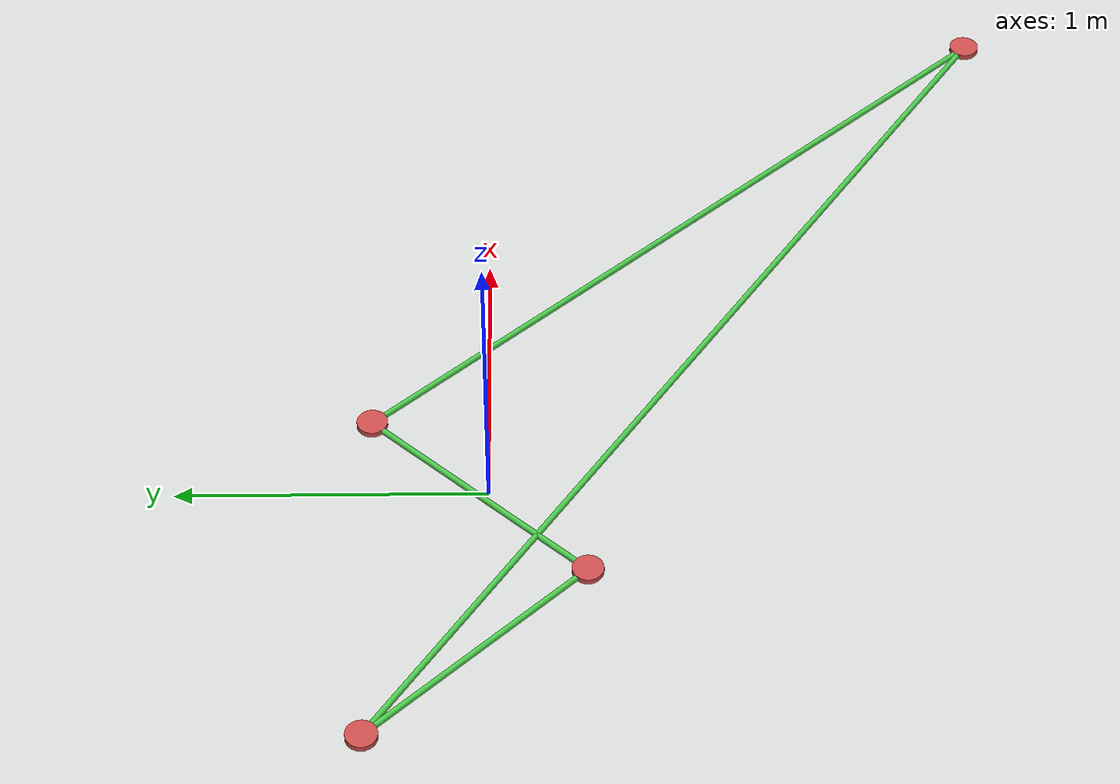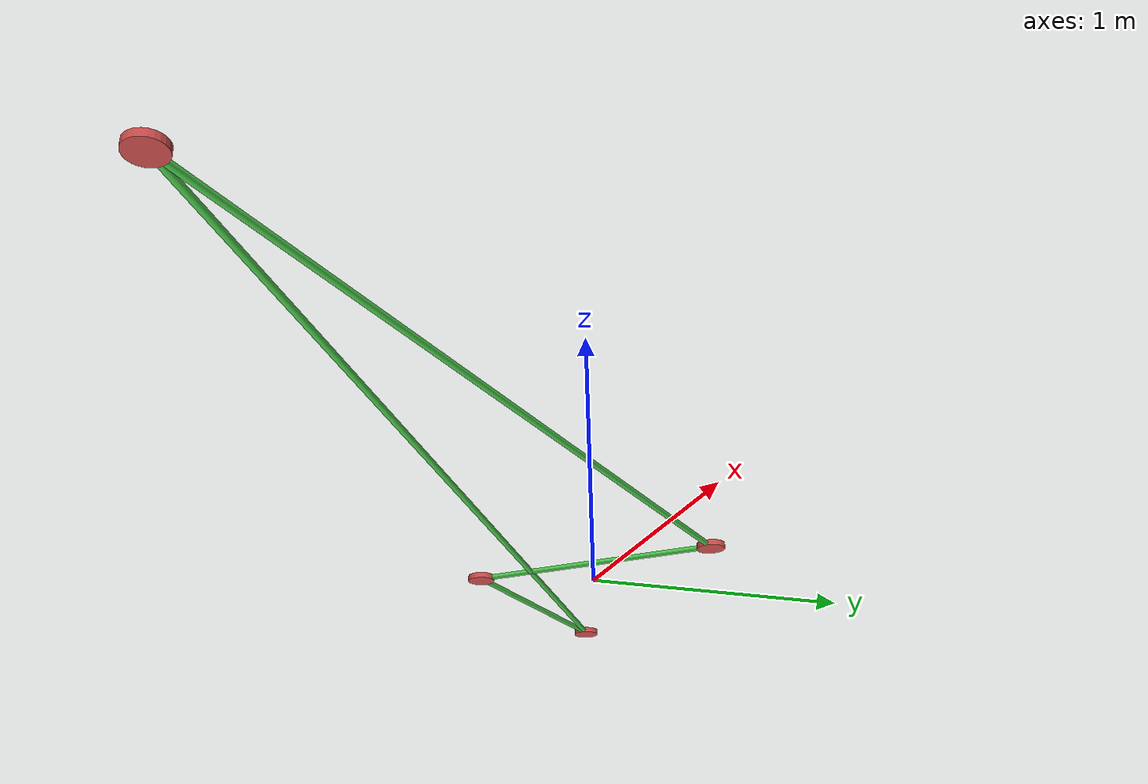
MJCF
<?xml version='1.0' encoding='UTF-8'?>
<mujoco>
  <option gravity="0 0 -9.81" timestep="0.002">
    <flag warmstart="enable"/>
  </option>
  <visual>
    <global offwidth="800" offheight="800"/>
    <quality shadowsize="4096"/>
    <map force="0.1" fogstart="3" fogend="5" znear="0.1" zfar="50"/>
  </visual>
  <asset>
    <texture type="skybox" builtin="gradient" rgb1="0.3 0.5 0.7" rgb2="0 0 0" width="512" height="512"/>
    <material name="arm1" rgba="0.8 0.3 0.3 1"/>
    <material name="arm2" rgba="0.3 0.8 0.3 1"/>
    <material name="arm3" rgba="0.3 0.3 0.8 1"/>
  </asset>
  <option gravity="0 0 -9.81" timestep="0.001">
    <flag warmstart="enable"/>
  </option>
  <default>
    <joint damping="1.0" armature="0.1" frictionloss="0.1"/>
  </default>
  <worldbody>
    <body name="base" pos="-0.3950124685830086 -0.3092843358865642 0.1">
      <geom name="base_geom" type="cylinder" size="0.05 0.01" material="arm1"/>
      <joint name="joint1" type="hinge" axis="0 0 1" pos="0 0 -0.05"/>
      <site name="site_1" pos="0 0 0"/>
      <geom name="capsule_1_2" type="capsule" fromto="0 0 0 -0.6153042500230126 0.6754187359417383 0.0" size="0.01" material="arm2"/>
      <site name="conn_site_1_2" pos="-0.6153042500230126 0.6754187359417383 0.0"/>
      <body name="link3" pos="0.6083105595032163 0.681724322695326 0">
        <geom name="link3_geom" type="cylinder" size="0.05 0.01" material="arm1"/>
        <joint name="joint3" type="hinge" axis="0 0 1" pos="0 0 -0.05"/>
        <site name="site_3" pos="0 0 0"/>
        <body name="link4" pos="1.7867019090797922 -2.078654465924599 0">
          <geom name="link4_geom" type="cylinder" size="0.05 0.01" material="arm1"/>
          <joint name="joint4" type="hinge" axis="0 0 1" pos="0 0 -0.05"/>
          <site name="site_4" pos="0 0 0"/>
          <geom name="capsule_4_2" type="capsule" fromto="0 0 0 -3.0103167186060213 2.0723488791710114 0.0" size="0.01" material="arm2"/>
          <site name="conn_site_4_2" pos="-3.0103167186060213 2.0723488791710114 0.0"/>
        </body>
        <geom name="capsule_3_4" type="capsule" fromto="0 0 0 1.7867019090797922 -2.078654465924599 0" size="0.01" material="arm2"/>
      </body>
      <geom name="capsule_1_3" type="capsule" fromto="0 0 0 0.6083105595032163 0.681724322695326 0" size="0.01" material="arm2"/>
    </body>
    <body name="end2" pos="-1.0103167186060211 0.36613440005517417 0.1">
      <geom name="end2_geom" type="cylinder" size="0.05 0.01" material="arm1"/>
      <site name="site_2" pos="0 0 0"/>
    </body>
  </worldbody>
  <tendon>
    <spatial name="tendon_1_2" limited="true" range="0 0.0001" width="0.003" rgba="0.8 0.8 0.8 1">
      <site site="conn_site_1_2"/>
      <site site="site_2"/>
    </spatial>
    <spatial name="tendon_4_2" limited="true" range="0 0.0001" width="0.003" rgba="0.8 0.8 0.8 1">
      <site site="conn_site_4_2"/>
      <site site="site_2"/>
    </spatial>
  </tendon>
  <actuator>
    <position name="vel_joint1" joint="joint1" kv="10.0" ctrlrange="-3.14 3.14"/>
    <position name="vel_joint3" joint="joint3" kv="10.0" ctrlrange="-3.14 3.14"/>
  </actuator>
</mujoco>
